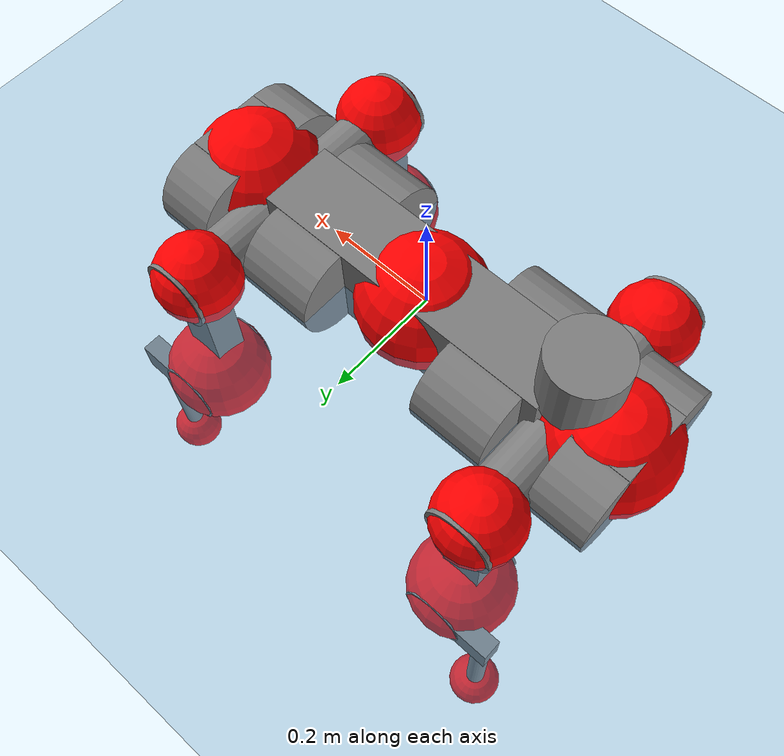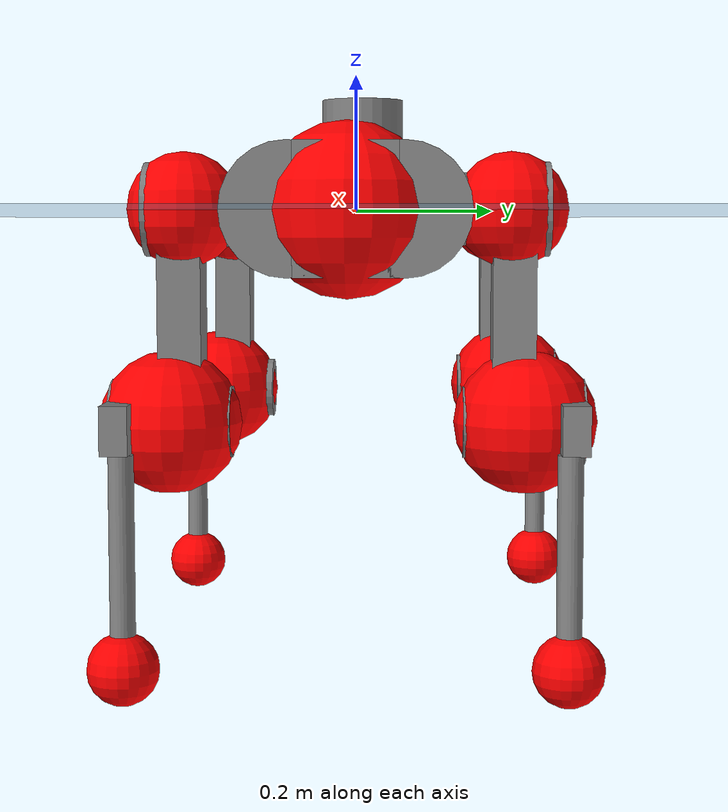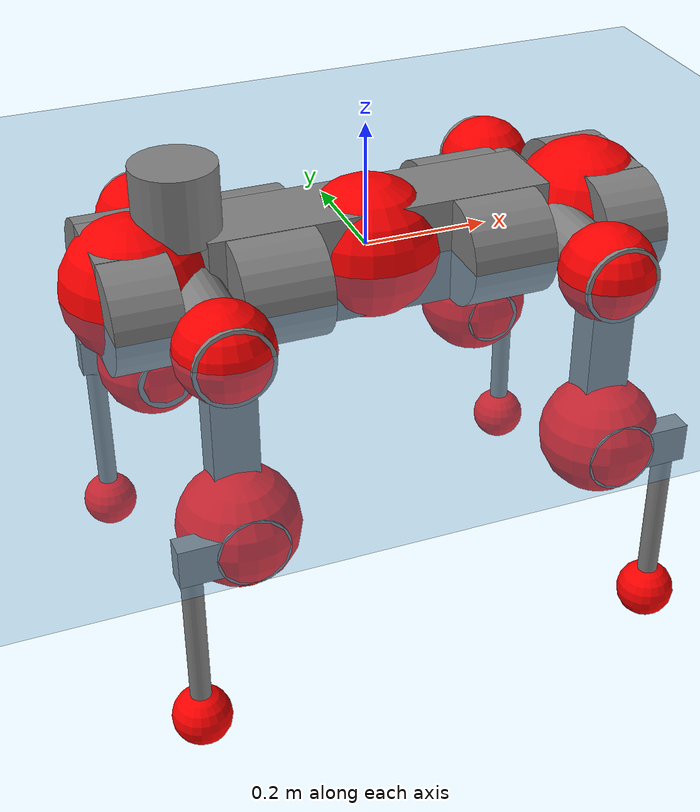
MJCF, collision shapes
<mujoco model="anymal_c">
  <compiler angle="radian" assetdir="assets" balanceinertia="true" inertiafromgeom="false"/>

  <option timestep="0.005" density="1.2" viscosity="2e-05"/>

  <size nkey="1"/>

  <visual>
    <quality shadowsize="8192"/>
    <map shadowclip="0.5"/>
  </visual>

  <default>
    <default class="/">
      <material specular="0" shininess="0.25"/>
      <geom contype="0" conaffinity="0" group="1" solref="-1000 -80"/>
      <site size="0.01 0.005 0.005" group="5"/>
      <general forcelimited="true" forcerange="-80 80" biastype="affine" gainprm="80" biasprm="0 -80 -2"/>
      <default class="anymal_c">
        <joint armature="0.01" damping="0.01" frictionloss="0.1"/>
        <default class="visual">
          <geom type="mesh" group="2"/>
          <default class="visual_zflip"/>
        </default>
        <default class="collision">
          <geom type="cylinder" group="3"/>
          <default class="foot">
            <geom size="0.03 0 0" type="sphere" condim="6" priority="1" friction="0.8 0.02 0.01" solimp="0.015 1 0.03"/>
          </default>
        </default>
      </default>
      <default class="reward_collision_sphere">
        <geom group="5" rgba="1 0 0 1"/>
      </default>
    </default>
  </default>

  <asset>
    <texture type="skybox" colorspace="auto" name="//unnamed_texture_0" builtin="gradient" rgb1="0.95 0.95 0.95" rgb2="0.95 0.95 0.95" width="100" height="600"/>
    <texture type="2d" colorspace="auto" name="texplane" builtin="checker" rgb1="0.345 0.575 0.748" rgb2="0.345 0.575 0.748" markrgb="1 1 1" width="512" height="512"/>
    <texture type="2d" colorspace="linear" name="base" file="base.png"/>
    <texture type="2d" colorspace="linear" name="top_shell" file="top_shell.png"/>
    <texture type="2d" colorspace="linear" name="bottom_shell" file="bottom_shell.png"/>
    <texture type="2d" colorspace="linear" name="remote" file="remote.png"/>
    <texture type="2d" colorspace="linear" name="hatch" file="hatch.png"/>
    <texture type="2d" colorspace="linear" name="handle" file="handle.png"/>
    <texture type="2d" colorspace="linear" name="face" file="face.png"/>
    <texture type="2d" colorspace="linear" name="battery" file="battery.png"/>
    <texture type="2d" colorspace="linear" name="lidar_cage" file="lidar_cage.png"/>
    <texture type="2d" colorspace="linear" name="depth_camera" file="depth_camera.png"/>
    <texture type="2d" colorspace="linear" name="wide_angle_camera" file="wide_angle_camera.png"/>
    <texture type="2d" colorspace="linear" name="lidar" file="lidar.png"/>
    <texture type="2d" colorspace="linear" name="drive" file="drive.png"/>
    <texture type="2d" colorspace="linear" name="hip_l" file="hip_l.png"/>
    <texture type="2d" colorspace="linear" name="shank_l" file="shank_l.png"/>
    <texture type="2d" colorspace="linear" name="foot" file="foot.png"/>
    <texture type="2d" colorspace="linear" name="thigh" file="thigh.png"/>
    <texture type="2d" colorspace="linear" name="shank_r" file="shank_r.png"/>
    <texture type="2d" colorspace="linear" name="hip_r" file="hip_r.png"/>
    <material name="MatPlane" class="/" texture="texplane" texuniform="true" texrepeat="2 2" specular="0.9" shininess="0.5"/>
    <material name="black_plastic" class="/" rgba="0.007 0.007 0.007 1"/>
    <material name="green" class="/" rgba="0.052 0.178 0.033 1"/>
    <material name="red" class="/" rgba="0.178 0.006 0.005 1"/>
    <material name="yellow" class="/" rgba="0.178 0.119 0.006 1"/>
    <material name="lwl" class="/" rgba="0.8 0.8 0.8 1"/>
    <material name="base" class="/" texture="base"/>
    <material name="top_shell" class="/" texture="top_shell"/>
    <material name="bottom_shell" class="/" texture="bottom_shell"/>
    <material name="hip_l" class="/" texture="hip_l"/>
    <material name="thigh" class="/" texture="thigh"/>
    <material name="shank_l" class="/" texture="shank_l"/>
    <material name="foot" class="/" texture="foot"/>
    <material name="hip_r" class="/" texture="hip_r"/>
    <material name="shank" class="/" texture="shank_r"/>
    <material name="hatch" class="/" texture="hatch"/>
    <material name="remote" class="/" texture="remote"/>
    <material name="handle" class="/" texture="handle"/>
    <material name="face" class="/" texture="face"/>
    <material name="depth_camera" class="/" texture="depth_camera"/>
    <material name="wide_angle_camera" class="/" texture="wide_angle_camera"/>
    <material name="battery" class="/" texture="battery"/>
    <material name="lidar_cage" class="/" texture="lidar_cage"/>
    <material name="lidar" class="/" texture="lidar"/>
    <material name="drive" class="/" texture="drive"/>
    <mesh name="base_0" class="/" file="base_0.obj"/>
    <mesh name="base_1" class="/" file="base_1.obj"/>
    <mesh name="base_2" class="/" file="base_2.obj"/>
    <mesh name="base_3" class="/" file="base_3.obj"/>
    <mesh name="base_4" class="/" file="base_4.obj"/>
    <mesh name="base_5" class="/" file="base_5.obj"/>
    <mesh name="top_shell" class="/" file="top_shell.obj"/>
    <mesh name="bottom_shell" class="/" file="bottom_shell.obj"/>
    <mesh name="remote" class="/" file="remote.obj"/>
    <mesh name="handle" class="/" file="handle.obj"/>
    <mesh name="face" class="/" file="face.obj"/>
    <mesh name="wide_angle_camera" class="/" file="wide_angle_camera.obj"/>
    <mesh name="depth_camera" class="/" file="depth_camera.obj"/>
    <mesh name="battery" class="/" file="battery.obj"/>
    <mesh name="lidar_cage" class="/" file="lidar_cage.obj"/>
    <mesh name="lidar" class="/" file="lidar.obj"/>
    <mesh name="drive" class="/" file="drive.obj"/>
    <mesh name="hip_l" class="/" file="hip_l.obj"/>
    <mesh name="thigh" class="/" file="thigh.obj"/>
    <mesh name="shank_l" class="/" file="shank_l.obj"/>
    <mesh name="foot" class="/" file="foot.obj"/>
    <mesh name="hip_r" class="/" file="hip_r.obj"/>
    <mesh name="hatch" class="/" file="hatch.obj"/>
    <mesh name="shank_r" class="/" file="shank_r.obj"/>
  </asset>

  <worldbody>
    <geom name="floor" class="/" size="100 100 0.125" type="plane" group="0" material="MatPlane"/>
    <light name="toplight_shadow" class="/" pos="0 0 5" dir="0.0990148 0.0990148 -0.990148" type="directional" ambient="0.04 0.04 0.04" diffuse="0.55 0.55 0.55" specular="0.12 0.12 0.12"/>
    <light name="toplight_fill" class="/" pos="0 0 5" dir="0.0990148 0.0990148 -0.990148" type="directional" castshadow="false" ambient="0.04 0.04 0.04" diffuse="0.3 0.3 0.3" specular="0.08 0.08 0.08"/>
    <body name="trunk" childclass="anymal_c" pos="0.0047305 0.0010108 -0.00175948" quat="0.999999 -0.000336119 -6.76643e-05 0.00112248">
      <inertial pos="0.00744442 -0.00234045 0.0455365" quat="0.49905 0.505842 0.501675 0.493351" mass="16.3551" diaginertia="0.232498 0.723781 0.18441"/>
      <joint name="//unnamed_joint_0" type="free" armature="0" damping="0" frictionloss="0"/>
      <geom name="//unnamed_geom_1" class="visual" material="green" mesh="base_0"/>
      <geom name="//unnamed_geom_2" class="visual" material="yellow" mesh="base_1"/>
      <geom name="//unnamed_geom_3" class="visual" material="red" mesh="base_2"/>
      <geom name="//unnamed_geom_4" class="visual" material="black_plastic" mesh="base_3"/>
      <geom name="//unnamed_geom_5" class="visual" material="lwl" mesh="base_4"/>
      <geom name="//unnamed_geom_6" class="visual" material="base" mesh="base_5"/>
      <geom name="trunk_1" class="collision" size="0.273526 0.0660235 0.0848874" type="box"/>
      <geom name="trunk_2" class="collision" size="0.0848874 0.0683815" pos="0.179059 0.0719955 0" quat="0.707107 0 0.707107 0"/>
      <geom name="trunk_3" class="collision" size="0.0848874 0.0683815" pos="-0.179059 0.0719955 0" quat="0.707107 0 0.707107 0"/>
      <geom name="trunk_4" class="collision" size="0.0848874 0.0683815" pos="0.179059 -0.0719955 0" quat="0.707107 0 0.707107 0"/>
      <geom name="trunk_5" class="collision" size="0.0848874 0.0683815" pos="-0.179059 -0.0719955 0" quat="0.707107 0 0.707107 0"/>
      <geom name="//unnamed_geom_12" class="visual" material="top_shell" mesh="top_shell"/>
      <geom name="//unnamed_geom_13" class="visual" material="bottom_shell" mesh="bottom_shell"/>
      <geom name="//unnamed_geom_14" class="visual" material="remote" mesh="remote"/>
      <geom name="//unnamed_geom_15" class="visual" material="handle" mesh="handle"/>
      <geom name="//unnamed_geom_16" class="visual" pos="0.341241 0 0" quat="1 0 0 0" material="face" mesh="face"/>
      <geom name="trunk_6" class="collision" size="0.0518756 0.0660235 0.0848874" pos="0.386521 0 0" type="box"/>
      <geom name="//unnamed_geom_18" class="collision" size="0.0848874 0.0518756" pos="0.386521 0.0719955 0" quat="0.707107 0 0.707107 0"/>
      <geom name="//unnamed_geom_19" class="collision" size="0.0848874 0.0518756" pos="0.386521 -0.0719955 0" quat="0.707107 0 0.707107 0"/>
      <geom name="//unnamed_geom_20" class="visual" pos="0.380064 0 -0.0297267" quat="0.965926 0 0.258819 0" material="depth_camera" mesh="depth_camera"/>
      <geom name="//unnamed_geom_21" class="visual" pos="0.422332 0 0.0146378" material="wide_angle_camera" mesh="wide_angle_camera"/>
      <geom name="//unnamed_geom_22" class="visual_zflip" pos="-0.341241 0 0" quat="0 0 0 1" material="face" mesh="face"/>
      <geom name="trunk_7" class="collision" size="0.0518756 0.0660235 0.0848874" pos="-0.386521 0 0" quat="0 0 0 1" type="box"/>
      <geom name="//unnamed_geom_24" class="collision" size="0.0848874 0.0518756" pos="-0.386521 -0.0719955 0" quat="0 -0.707107 0 0.707107"/>
      <geom name="//unnamed_geom_25" class="collision" size="0.0848874 0.0518756" pos="-0.386521 0.0719955 0" quat="0 -0.707107 0 0.707107"/>
      <geom name="//unnamed_geom_26" class="visual" pos="-0.380064 0 -0.0297267" quat="0 -0.258819 0 0.965926" material="depth_camera" mesh="depth_camera"/>
      <geom name="//unnamed_geom_27" class="visual_zflip" pos="-0.422332 0 0.0146378" quat="0 0 0 1" material="wide_angle_camera" mesh="wide_angle_camera"/>
      <geom name="//unnamed_geom_28" class="visual" material="battery" mesh="battery"/>
      <geom name="//unnamed_geom_29" class="visual" pos="0 0.0813394 0.0272308" quat="0.683013 -0.183013 0.183013 0.683013" material="depth_camera" mesh="depth_camera"/>
      <geom name="//unnamed_geom_30" class="visual" pos="0 -0.0813394 0.0272308" quat="0.683013 0.183013 0.183013 -0.683013" material="depth_camera" mesh="depth_camera"/>
      <geom name="//unnamed_geom_31" class="visual" pos="-0.299667 0 0.0718692" quat="1 0 0 0" material="lidar_cage" mesh="lidar_cage"/>
      <geom name="trunk_8" class="collision" size="0.0660235 0.0565916" pos="-0.299667 0 0.130538"/>
      <geom name="//unnamed_geom_33" class="visual" pos="-0.299667 8.06364e-05 0.139045" quat="0.707107 0 0 -0.707107" material="lidar" mesh="lidar"/>
      <geom name="//unnamed_geom_34" class="visual" pos="0.246896 0.106947 8.74508e-10" quat="0.258819 0.965926 0 0" material="drive" mesh="drive"/>
      <geom name="//unnamed_geom_35" class="visual" pos="0.246896 -0.106947 -8.74508e-10" quat="0.258819 -0.965926 0 0" material="drive" mesh="drive"/>
      <geom name="//unnamed_geom_36" class="visual" pos="-0.246896 0.106947 -8.74508e-10" quat="0 0 0.965926 -0.258819" material="drive" mesh="drive"/>
      <geom name="//unnamed_geom_37" class="visual" pos="-0.246896 -0.106947 8.74508e-10" quat="0 0 -0.965926 -0.258819" material="drive" mesh="drive"/>
      <geom name="//unnamed_geom_38" class="visual" pos="0.0954981 0 0.0713803" quat="1 0 0 0" material="hatch" mesh="hatch"/>
      <geom name="//unnamed_geom_39" class="reward_collision_sphere" size="0.113183"/>
      <geom name="//unnamed_geom_40" class="reward_collision_sphere" size="0.113183" pos="0.370467 0 0"/>
      <geom name="//unnamed_geom_41" class="reward_collision_sphere" size="0.113183" pos="-0.370467 0 0"/>
      <site name="imu" pos="0.206055 0.0182799 0.033444" size="0.00943193"/>
      <camera name="track" pos="0 -2.05702 0" quat="0.707107 0.707107 0 0" mode="trackcom"/>
      <camera name="ego_camera" pos="0.370467 0 -0.0391125" quat="-0.5 -0.5 0.5 0.5"/>
      <body name="LF_HIP" pos="0.247138 0.107306 0.00197413" quat="0.259238 0.965811 -0.00198134 0.00133053">
        <inertial pos="0.0522445 -0.0162771 -0.0086102" quat="-0.123409 0.709358 -0.136028 0.680498" mass="2.18032" diaginertia="0.00206481 0.00571476 0.00284166"/>
        <joint name="LF_HAA" pos="0 0 0" axis="0.999874 0.0158546 -0.000631785" range="-0.742181 0.551723" armature="0.00859314" damping="0.00876584" frictionloss="0.10157"/>
        <geom name="//unnamed_geom_42" class="visual" pos="0 5.14434e-05 -8.44953e-06" quat="0.258819 -0.965926 0 0" material="hip_l" mesh="hip_l"/>
        <geom name="//unnamed_geom_43" class="visual" pos="0.0493133 -0.0624379 -0.0356736" quat="0.183013 -0.683013 0.683013 0.183013" material="drive" mesh="drive"/>
        <geom name="//unnamed_geom_44" class="collision" size="0.0471597 0.0660235" pos="0.0493133 -0.0123007 -0.00675179" quat="-0.353553 -0.612372 0.612372 -0.353553"/>
        <body name="LF_THIGH" pos="0.0497843 -0.0718866 -0.0406727" quat="0.183217 -0.683122 0.682861 0.182966">
          <inertial pos="0.0207101 0.000872625 -0.243807" quat="0.993462 -0.0100547 -0.0807132 0.0801149" mass="2.47457" diaginertia="0.0110987 0.0350872 0.00362101"/>
          <joint name="LF_HFE" pos="0 0 0" axis="0.999988 0.00198559 0.00438892" range="-3.09269 3.10375" armature="0.00855045" damping="0.030135" frictionloss="0.0988398"/>
          <geom name="//unnamed_geom_45" class="visual" pos="-0.00408362 -6.43484e-06 0" quat="0.707107 0 0 -0.707107" material="thigh" mesh="thigh"/>
          <geom name="//unnamed_geom_46" class="collision" size="0.0613076 0.0377277" pos="0.0329304 0 0" quat="0.5 0.5 -0.5 -0.5"/>
          <geom name="//unnamed_geom_47" class="collision" size="0.0353697 0.0282958 0.133286" pos="0.0246978 0 -0.138179" quat="0.707107 0 0 -0.707107" type="box"/>
          <geom name="//unnamed_geom_48" class="visual" pos="0.082573 0 -0.278676" quat="1 0 0 0" material="drive" mesh="drive"/>
          <geom name="//unnamed_geom_49" class="collision" size="0.0471597 0.0660235" pos="0.0249448 0 -0.278676" quat="0.707107 0 0.707107 0"/>
          <geom name="//unnamed_geom_50" class="reward_collision_sphere" size="0.0754555" pos="0.0205815 0 0"/>
          <body name="LF_SHANK" pos="0.0825592 0.00184221 -0.277844" quat="1 -5.17903e-05 -0.000156448 -0.000188633">
            <inertial pos="0.00460864 -0.0622954 -0.0773034" quat="0.993523 -0.112857 0.00716946 -0.011165" mass="0.509257" diaginertia="0.00374877 0.0107701 0.00101039"/>
            <joint name="LF_KFE" pos="0 0 0" axis="0.999906 0.00938376 0.0100129" range="-3.17046 3.19498" armature="0.00916837" damping="0.0104869" frictionloss="0.0841561"/>
            <geom name="//unnamed_geom_51" class="visual" pos="-0.00133158 -0.00710006 0" quat="0.707107 0 0 -0.707107" material="shank_l" mesh="shank_l"/>
            <geom name="LF_kfe_act" class="collision" size="0.0565916 0.0188639" pos="0.0164652 0 0" quat="0.5 0.5 -0.5 -0.5"/>
            <geom name="//unnamed_geom_53" class="collision" size="0.0542327 0.0318328 0.0179207" pos="0.0164652 -0.0591382 0" quat="0.5 0.5 -0.5 -0.5" type="box"/>
            <geom name="//unnamed_geom_54" class="visual" pos="0.0107439 -0.0927453 -0.330471" quat="0.382683 0 0 -0.92388" material="foot" mesh="foot"/>
            <geom name="LF_calf" class="collision" size="0.0165059 0.133228" pos="0.0107435 -0.0904573 -0.165236" quat="0.707107 0 0 -0.707107"/>
            <geom name="LF_foot" class="foot" size="0.0328596" pos="0.0107435 -0.0904573 -0.30847" quat="0.707107 0 0 -0.707107"/>
            <geom name="//unnamed_geom_57" class="reward_collision_sphere" size="0.0943193" pos="-0.041163 0 0"/>
            <geom name="//unnamed_geom_58" class="reward_collision_sphere" size="0.0471597" pos="0.0107435 -0.0904573 -0.30847"/>
            <site name="LF_foot" class="foot" pos="0.0107435 -0.0904573 -0.30847" quat="0.707107 0 0 -0.707107" size="0.00943193"/>
          </body>
        </body>
      </body>
      <body name="RF_HIP" pos="0.247097 -0.110144 -0.000630315" quat="0.258654 -0.96597 -0.000533048 0.000193696">
        <inertial pos="0.0446213 0.0185393 -0.00837881" quat="0.13253 0.679447 0.125288 0.710697" mass="2.11395" diaginertia="0.00212774 0.00542472 0.00291721"/>
        <joint name="RF_HAA" pos="0 0 0" axis="0.999999 -9.82741e-05 0.00171399" range="-0.48465 0.719176" armature="0.0117828" damping="0.0101147" frictionloss="0.0711332"/>
        <geom name="//unnamed_geom_59" class="visual" pos="0 -5.1443e-05 -8.44951e-06" quat="0.258819 0.965926 0 0" material="hip_r" mesh="hip_r"/>
        <geom name="//unnamed_geom_60" class="visual" pos="0.0493133 0.0624379 -0.0356736" quat="0.183013 0.683013 0.683013 -0.183013" material="drive" mesh="drive"/>
        <geom name="//unnamed_geom_61" class="collision" size="0.0471597 0.0660235" pos="0.0493133 0.0123007 -0.00675179" quat="-0.353553 0.612372 0.612372 0.353553"/>
        <body name="RF_THIGH" pos="0.0521485 0.0730261 -0.0444877" quat="0.182155 0.682573 0.684112 -0.181395">
          <inertial pos="0.0266492 0.00540024 -0.242544" quat="0.991511 -0.00578843 -0.09014 0.0935299" mass="2.69352" diaginertia="0.0110705 0.0329658 0.0037521"/>
          <joint name="RF_HFE" pos="0 0 0" axis="0.999873 0.00209504 0.0157956" stiffness="0.00796883" range="-3.18866 3.10365" armature="0.00924652" damping="0.008824" frictionloss="0.101418"/>
          <geom name="//unnamed_geom_62" class="visual" pos="-0.00408362 -6.43484e-06 0" quat="0.707107 0 0 -0.707107" material="thigh" mesh="thigh"/>
          <geom name="//unnamed_geom_63" class="collision" size="0.0613076 0.0377277" pos="0.0329304 0 0" quat="0.5 0.5 0.5 0.5"/>
          <geom name="//unnamed_geom_64" class="collision" size="0.0353697 0.0282958 0.133286" pos="0.0246978 0 -0.138179" quat="0.707107 0 0 0.707107" type="box"/>
          <geom name="//unnamed_geom_65" class="visual" pos="0.082573 0 -0.278676" quat="1 0 0 0" material="drive" mesh="drive"/>
          <geom name="//unnamed_geom_66" class="collision" size="0.0471597 0.0660235" pos="0.0249448 0 -0.278676" quat="0.707107 0 0.707107 0"/>
          <geom name="//unnamed_geom_67" class="reward_collision_sphere" size="0.0754555" pos="0.0205815 0 0"/>
          <body name="RF_SHANK" pos="0.0819993 0.000255767 -0.279224" quat="1 -0.000472981 -3.99217e-05 0.00028421">
            <inertial pos="0.00530742 0.0634608 -0.0810242" quat="0.993802 0.109801 -0.00371801 0.0169629" mass="0.492347" diaginertia="0.00358578 0.0104595 0.000977851"/>
            <joint name="RF_KFE" pos="0 0 0" axis="0.999926 0.0050285 0.0110671" range="-3.14453 3.09937" armature="0.0100377" damping="0.00933056" frictionloss="0.105731"/>
            <geom name="//unnamed_geom_68" class="visual" pos="-0.00133157 0.00710004 0" quat="0.707107 0 0 0.707107" material="shank" mesh="shank_r"/>
            <geom name="RF_kfe_act" class="collision" size="0.0565916 0.0188639" pos="0.0164652 0 0" quat="0.5 0.5 0.5 0.5"/>
            <geom name="//unnamed_geom_70" class="collision" size="0.0542327 0.0318328 0.0179207" pos="0.0164652 0.0591382 0" quat="0.5 0.5 0.5 0.5" type="box"/>
            <geom name="//unnamed_geom_71" class="visual" pos="0.0107432 0.0927453 -0.330471" quat="0.382683 0 0 0.92388" material="foot" mesh="foot"/>
            <geom name="RF_calf" class="collision" size="0.0165059 0.133228" pos="0.0107435 0.0904573 -0.165236" quat="0.707107 0 0 0.707107"/>
            <geom name="RF_foot" class="foot" size="0.0314139" pos="0.0107435 0.0904573 -0.30847" quat="0.707107 0 0 0.707107"/>
            <geom name="//unnamed_geom_74" class="reward_collision_sphere" size="0.0943193" pos="-0.041163 0 0"/>
            <geom name="//unnamed_geom_75" class="reward_collision_sphere" size="0.0471597" pos="0.0107435 0.0904573 -0.30847"/>
            <site name="RF_foot" class="foot" pos="0.0107435 0.0904573 -0.30847" quat="0.707107 0 0 0.707107" size="0.00943193"/>
          </body>
        </body>
      </body>
      <body name="LH_HIP" pos="-0.247926 0.110275 0.000297577" quat="0.00181883 -0.00133579 0.966498 -0.256665">
        <inertial pos="0.0419482 0.0129669 -0.00651145" quat="0.135383 0.679083 0.12773 0.710072" mass="2.42966" diaginertia="0.00224293 0.00562227 0.00288296"/>
        <joint name="LH_HAA" pos="0 0 0" axis="0.999953 -0.00219248 0.00947885" range="-0.543094 0.767813" armature="0.00956955" damping="0.00869211" frictionloss="0.102889"/>
        <geom name="//unnamed_geom_76" class="visual" pos="0 -5.1443e-05 -8.44951e-06" quat="-0.258819 -0.965926 0 0" material="hip_r" mesh="hip_r"/>
        <geom name="//unnamed_geom_77" class="visual" pos="0.0493133 0.0624379 -0.0356736" quat="0.183013 0.683013 0.683013 -0.183013" material="drive" mesh="drive"/>
        <geom name="//unnamed_geom_78" class="collision" size="0.0471597 0.0660235" pos="0.0493133 0.0123007 -0.00675179" quat="-0.353553 0.612372 0.612372 0.353553"/>
        <body name="LH_THIGH" pos="0.0533363 0.0761682 -0.0426656" quat="0.182156 0.681829 0.684557 -0.182514">
          <inertial pos="0.0255822 -0.0024239 -0.242366" quat="0.994513 -0.00661748 -0.0671146 0.0799755" mass="2.66755" diaginertia="0.0117867 0.0353057 0.00384383"/>
          <joint name="LH_HFE" pos="0 0 0" axis="0.999988 -0.00475424 -0.00122436" range="-3.18853 3.14774" armature="0.00970629" damping="0.0297434" frictionloss="0.084833"/>
          <geom name="//unnamed_geom_79" class="visual" pos="-0.00408362 -6.43484e-06 0" quat="0.707107 0 0 -0.707107" material="thigh" mesh="thigh"/>
          <geom name="//unnamed_geom_80" class="collision" size="0.0613076 0.0377277" pos="0.0329304 0 0" quat="0.5 0.5 -0.5 -0.5"/>
          <geom name="//unnamed_geom_81" class="collision" size="0.0353697 0.0282958 0.133286" pos="0.0246978 0 -0.138179" quat="0.707107 0 0 -0.707107" type="box"/>
          <geom name="//unnamed_geom_82" class="visual" pos="0.082573 0 -0.278676" quat="1 0 0 0" material="drive" mesh="drive"/>
          <geom name="//unnamed_geom_83" class="collision" size="0.0471597 0.0660235" pos="0.0249448 0 -0.278676" quat="0.707107 0 0.707107 0"/>
          <geom name="//unnamed_geom_84" class="reward_collision_sphere" size="0.0754555" pos="0.0205815 0 0"/>
          <body name="LH_SHANK" pos="0.0851053 0.000681375 -0.277959" quat="1 4.21498e-06 0.000360648 -0.000246417">
            <inertial pos="0.00456966 0.0633694 -0.0785729" quat="0.993049 0.115367 -0.00203921 0.0232185" mass="0.490344" diaginertia="0.00384786 0.0106034 0.000978978"/>
            <joint name="LH_KFE" pos="0 0 0" axis="0.999975 -0.00679746 0.00205691" range="-3.1934 3.1411" armature="0.00895286" damping="0.0261688" frictionloss="0.0935809"/>
            <geom name="//unnamed_geom_85" class="visual" pos="-0.00133157 0.00710004 0" quat="-0.707107 0 0 -0.707107" material="shank" mesh="shank_r"/>
            <geom name="LH_kfe_act" class="collision" size="0.0565916 0.0188639" pos="0.0164652 0 0" quat="0.5 0.5 -0.5 -0.5"/>
            <geom name="//unnamed_geom_87" class="collision" size="0.0542327 0.0318328 0.0179207" pos="0.0164652 0.0591382 0" quat="0.5 0.5 -0.5 -0.5" type="box"/>
            <geom name="//unnamed_geom_88" class="visual" pos="0.0107432 0.0927453 -0.330471" quat="-0.382683 0 0 -0.92388" material="foot" mesh="foot"/>
            <geom name="LH_calf" class="collision" size="0.0165059 0.133228" pos="0.0107435 0.0904573 -0.165236" quat="0.707107 0 0 -0.707107"/>
            <geom name="LH_foot" class="foot" size="0.0276689" pos="0.0107435 0.0904573 -0.30847" quat="0.707107 0 0 -0.707107"/>
            <geom name="//unnamed_geom_91" class="reward_collision_sphere" size="0.0943193" pos="-0.041163 0 0"/>
            <geom name="//unnamed_geom_92" class="reward_collision_sphere" size="0.0471597" pos="0.0107435 0.0904573 -0.30847"/>
            <site name="LH_foot" class="foot" pos="0.0107435 0.0904573 -0.30847" quat="0.707107 0 0 -0.707107" size="0.00943193"/>
          </body>
        </body>
      </body>
      <body name="RH_HIP" pos="-0.247233 -0.102351 -0.00259664" quat="-0.000325913 -0.000233087 -0.965911 -0.258874">
        <inertial pos="0.0463784 -0.0178751 -0.00815891" quat="-0.122306 0.700052 -0.147935 0.687811" mass="2.34716" diaginertia="0.00222349 0.00564683 0.00288219"/>
        <joint name="RH_HAA" pos="0 0 0" axis="0.99996 -0.000640592 -0.00889977" range="-0.678623 0.480887" armature="0.0070801" damping="0" frictionloss="0.109208"/>
        <geom name="//unnamed_geom_93" class="visual" pos="0 5.14434e-05 -8.44953e-06" quat="-0.258819 0.965926 0 0" material="hip_l" mesh="hip_l"/>
        <geom name="//unnamed_geom_94" class="visual" pos="0.0493133 -0.0624379 -0.0356736" quat="-0.183013 0.683013 -0.683013 -0.183013" material="drive" mesh="drive"/>
        <geom name="//unnamed_geom_95" class="collision" size="0.0471597 0.0660235" pos="0.0493133 -0.0123007 -0.00675179" quat="0.353553 0.612372 -0.612372 0.353553"/>
        <body name="RH_THIGH" pos="0.0506593 -0.0769432 -0.0379608" quat="-0.183062 0.682637 -0.683171 -0.18377">
          <inertial pos="0.0252916 -0.00103274 -0.238923" quat="0.992868 -0.00734824 -0.0806221 0.0875208" mass="2.48225" diaginertia="0.0109486 0.0339085 0.00382455"/>
          <joint name="RH_HFE" pos="0 0 0" axis="0.999923 -0.00980213 -0.00756359" stiffness="0.00469139" range="-3.06365 3.13988" armature="0.00963084" damping="0" frictionloss="0.0831175"/>
          <geom name="//unnamed_geom_96" class="visual" pos="-0.00408362 -6.43484e-06 0" quat="0.707107 0 0 -0.707107" material="thigh" mesh="thigh"/>
          <geom name="//unnamed_geom_97" class="collision" size="0.0613076 0.0377277" pos="0.0329304 0 0" quat="0.5 0.5 0.5 0.5"/>
          <geom name="//unnamed_geom_98" class="collision" size="0.0353697 0.0282958 0.133286" pos="0.0246978 0 -0.138179" quat="0.707107 0 0 0.707107" type="box"/>
          <geom name="//unnamed_geom_99" class="visual" pos="0.082573 0 -0.278676" quat="1 0 0 0" material="drive" mesh="drive"/>
          <geom name="//unnamed_geom_100" class="collision" size="0.0471597 0.0660235" pos="0.0249448 0 -0.278676" quat="0.707107 0 0.707107 0"/>
          <geom name="//unnamed_geom_101" class="reward_collision_sphere" size="0.0754555" pos="0.0205815 0 0"/>
          <body name="RH_SHANK" pos="0.0890309 -0.00149264 -0.278854" quat="0.999999 0.000380357 0.000561949 0.000864216">
            <inertial pos="-0.0014499 -0.0625547 -0.0784582" quat="0.99343 -0.112272 0.00585259 -0.0213906" mass="0.488471" diaginertia="0.00411204 0.0114904 0.00105527"/>
            <joint name="RH_KFE" pos="0 0 0" axis="0.999785 -0.0200884 0.00517423" range="-3.16447 3.01482" armature="0.010434" damping="0.0177319" frictionloss="0.105381"/>
            <geom name="//unnamed_geom_102" class="visual" pos="-0.00133158 -0.00710006 0" quat="0.707107 0 0 -0.707107" material="shank_l" mesh="shank_l"/>
            <geom name="RH_kfe_act" class="collision" size="0.0565916 0.0188639" pos="0.0164652 0 0" quat="0.5 0.5 0.5 0.5"/>
            <geom name="//unnamed_geom_104" class="collision" size="0.0542327 0.0318328 0.0179207" pos="0.0164652 -0.0591382 0" quat="0.5 0.5 0.5 0.5" type="box"/>
            <geom name="//unnamed_geom_105" class="visual" pos="0.0107439 -0.0927453 -0.330471" quat="0.382683 0 0 -0.92388" material="foot" mesh="foot"/>
            <geom name="RH_calf" class="collision" size="0.0165059 0.133228" pos="0.0107435 -0.0904573 -0.165236" quat="0.707107 0 0 0.707107"/>
            <geom name="RH_foot" class="foot" size="0.025653" pos="0.0107435 -0.0904573 -0.30847" quat="0.707107 0 0 0.707107"/>
            <geom name="//unnamed_geom_108" class="reward_collision_sphere" size="0.0943193" pos="-0.041163 0 0"/>
            <geom name="//unnamed_geom_109" class="reward_collision_sphere" size="0.0471597" pos="0.0107435 -0.0904573 -0.30847"/>
            <site name="RH_foot" class="foot" pos="0.0107435 -0.0904573 -0.30847" quat="0.707107 0 0 0.707107" size="0.00943193"/>
          </body>
        </body>
      </body>
    </body>
  </worldbody>

  <contact>
    <pair class="/" geom1="floor" geom2="LF_foot" name="//unnamed_contact_0"/>
    <pair class="/" geom1="floor" geom2="RF_foot" name="//unnamed_contact_1"/>
    <pair class="/" geom1="floor" geom2="LH_foot" name="//unnamed_contact_2"/>
    <pair class="/" geom1="floor" geom2="RH_foot" name="//unnamed_contact_3"/>
  </contact>

  <actuator>
    <general name="LF_HAA" class="/" joint="LF_HAA" forcerange="-75.8911 75.8911" gainprm="77.1271" biasprm="0 -77.1271 -2.16064"/>
    <general name="LF_HFE" class="/" joint="LF_HFE" forcerange="-73.3938 73.3938" gainprm="77.1271" biasprm="0 -77.1271 -2.16064"/>
    <general name="LF_KFE" class="/" joint="LF_KFE" forcerange="-74.1982 74.1982" gainprm="77.1271" biasprm="0 -77.1271 -2.16064"/>
    <general name="RF_HAA" class="/" joint="RF_HAA" forcerange="-59.4195 59.4195" gainprm="77.1271" biasprm="0 -77.1271 -2.16064"/>
    <general name="RF_HFE" class="/" joint="RF_HFE" forcerange="-75.5403 75.5403" gainprm="77.1271" biasprm="0 -77.1271 -2.16064"/>
    <general name="RF_KFE" class="/" joint="RF_KFE" forcerange="-79.8856 79.8856" gainprm="77.1271" biasprm="0 -77.1271 -2.16064"/>
    <general name="LH_HAA" class="/" joint="LH_HAA" forcerange="-72.2546 72.2546" gainprm="77.1271" biasprm="0 -77.1271 -2.16064"/>
    <general name="LH_HFE" class="/" joint="LH_HFE" forcerange="-71.9556 71.9556" gainprm="77.1271" biasprm="0 -77.1271 -2.16064"/>
    <general name="LH_KFE" class="/" joint="LH_KFE" forcerange="-80.6427 80.6427" gainprm="77.1271" biasprm="0 -77.1271 -2.16064"/>
    <general name="RH_HAA" class="/" joint="RH_HAA" forcerange="-82.7075 82.7075" gainprm="77.1271" biasprm="0 -77.1271 -2.16064"/>
    <general name="RH_HFE" class="/" joint="RH_HFE" forcerange="-69.9359 69.9359" gainprm="77.1271" biasprm="0 -77.1271 -2.16064"/>
    <general name="RH_KFE" class="/" joint="RH_KFE" forcerange="-64.6857 64.6857" gainprm="77.1271" biasprm="0 -77.1271 -2.16064"/>
  </actuator>

  <sensor>
    <gyro site="imu" name="imu_angular_velocity"/>
    <velocimeter site="imu" name="imu_linear_velocity"/>
    <framelinvel objtype="site" objname="LF_foot" name="LF_foot_global_linear_velocity"/>
    <framelinvel objtype="site" objname="RF_foot" name="RF_foot_global_linear_velocity"/>
    <framelinvel objtype="site" objname="LH_foot" name="LH_foot_global_linear_velocity"/>
    <framelinvel objtype="site" objname="RH_foot" name="RH_foot_global_linear_velocity"/>
  </sensor>

  <keyframe>
    <key name="home" qpos="0 0 0.55 1 0 0 0 0 0.4 -0.8 0 -0.4 0.8 0 -0.4 0.8 0 0.4 -0.8"/>
  </keyframe>
</mujoco>
